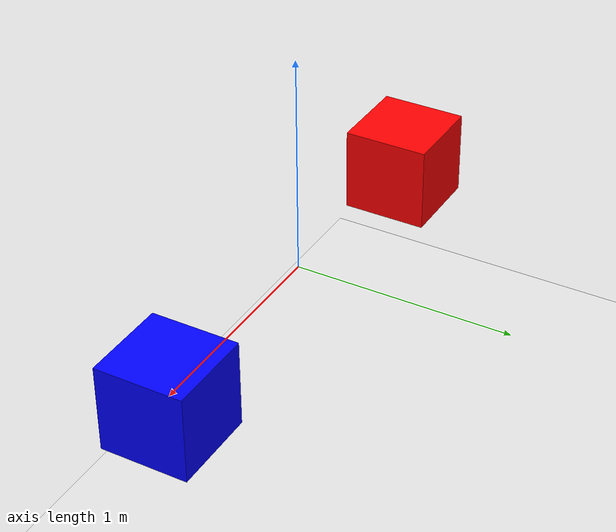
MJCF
<mujoco>
  <option gravity="0 0 -9.81"/>
  <worldbody>
    <body name="ground_plane" pos="0 0 -1">
      <geom type="plane" size="20 20 0.1" rgba="0.9 0.9 0.9 1"/>
    </body>
    <body name="spring_anchor" pos="0 0 0"/>
    <body name="spring_block_1" pos="-1 0 0">
      <geom type="box" size="0.2 0.2 0.2" mass="2" rgba="1 0 0 1"/>
      <joint type="slide" axis="1 0 0"/>
    </body>
    <body name="spring_block_2" pos="1 0 0">
      <geom type="box" size="0.2 0.2 0.2" mass="1" rgba="0 0 1 1"/>
      <joint type="slide" axis="1 0 0"/>
    </body>
    <body name="motion_site" pos="0 0 1"/>
  </worldbody>
  <tendon>
    <spatial name="spring1" width="0.01" springref="0.5" stiffness="50">
      <site site="spring_anchor"/>
      <site site="spring_block_1"/>
    </spatial>
    <spatial name="spring2" width="0.01" springref="0.5" stiffness="100">
      <site site="spring_anchor"/>
      <site site="spring_block_2"/>
    </spatial>
  </tendon>
</mujoco>
